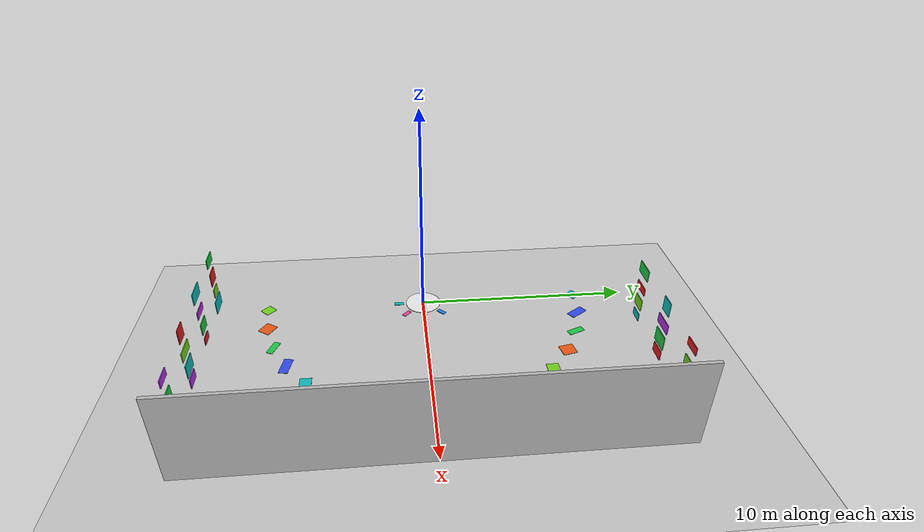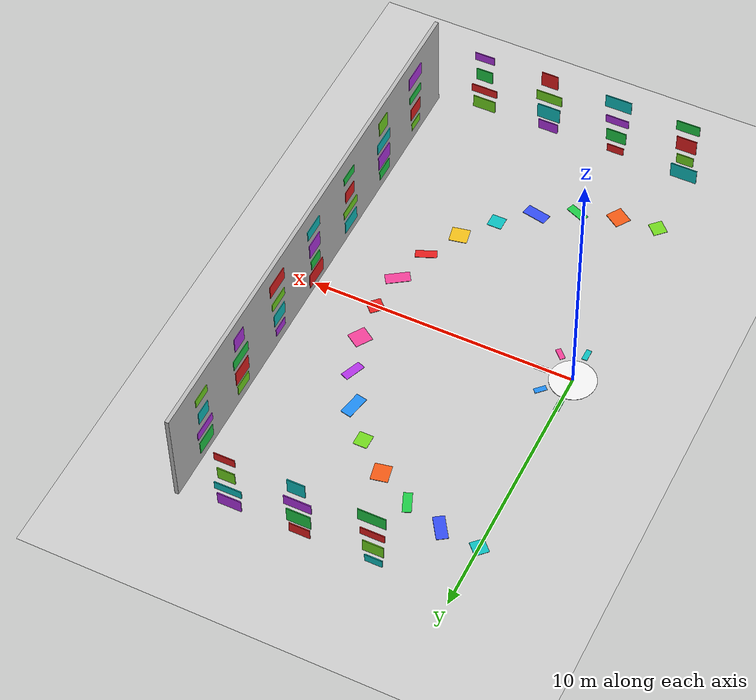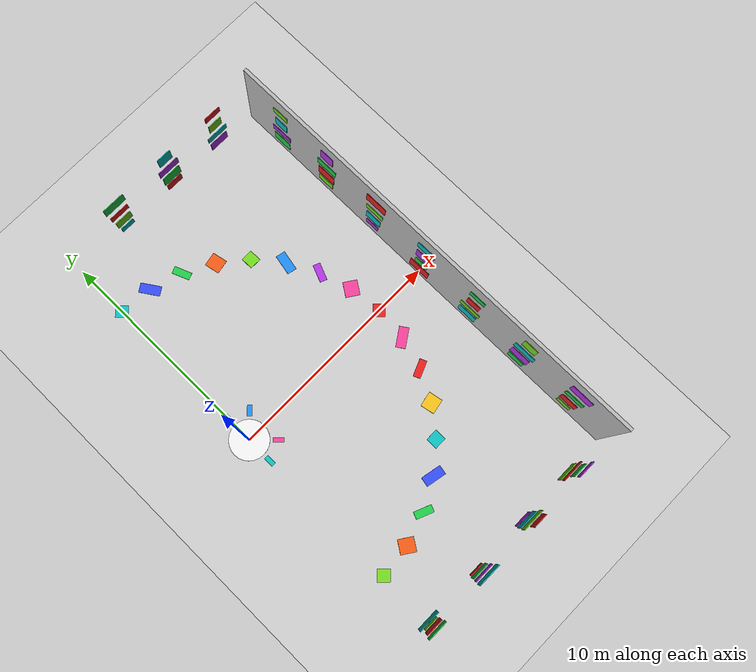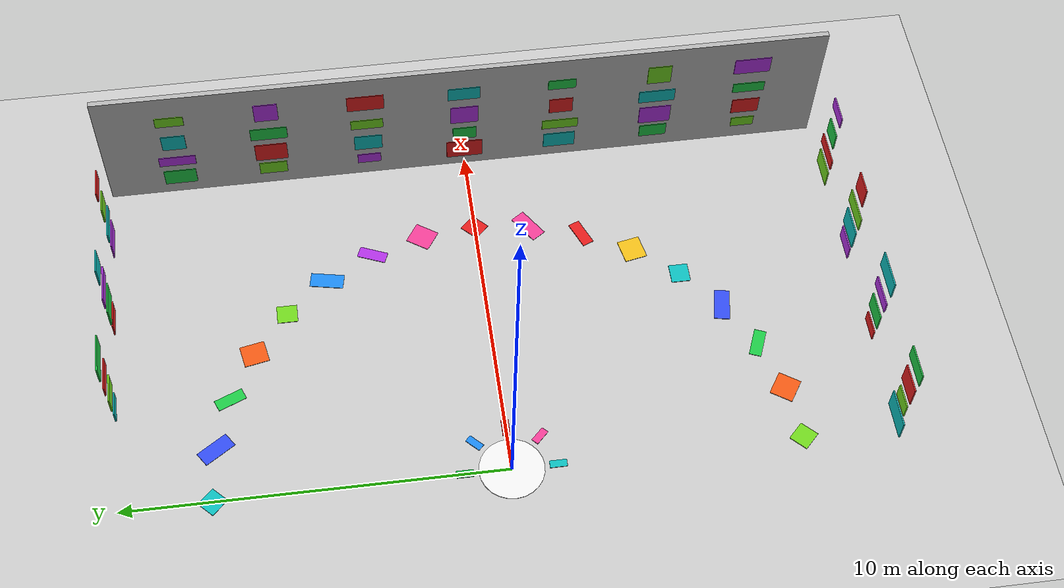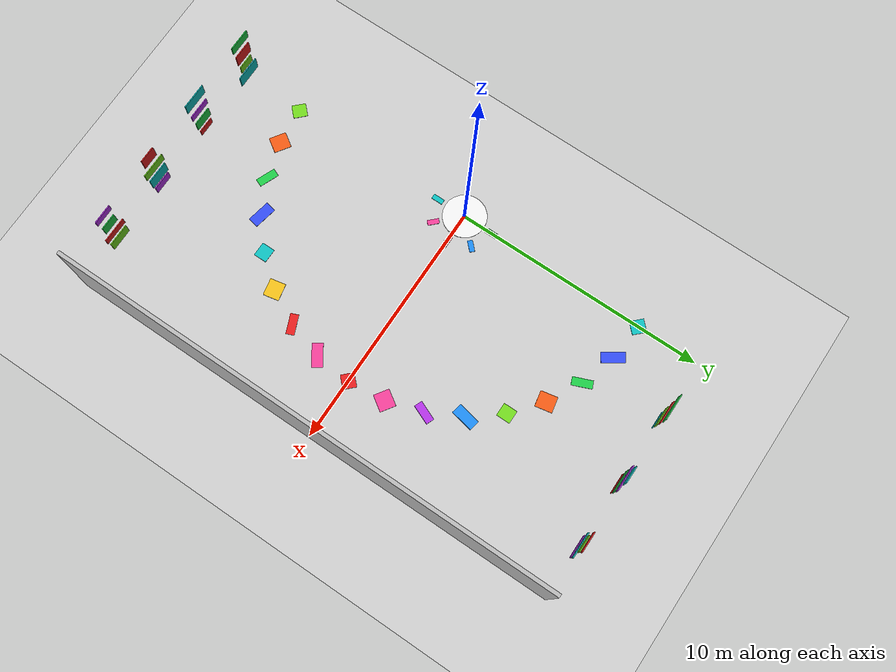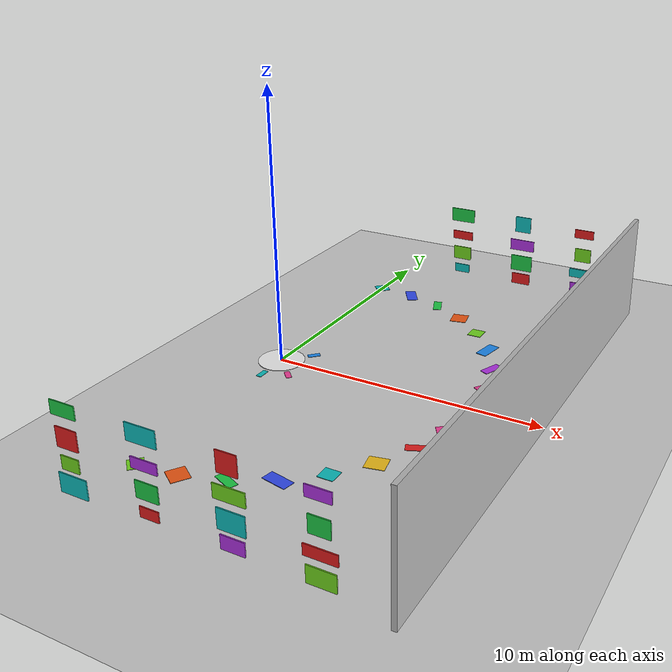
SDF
<sdf version="1.9">
 <world name="vio_marker_arena">
  <model name="ground_plane">
   <static>true</static>
   <link name="link">
    <collision name="collision">
     <geometry><plane><normal>0 0 1</normal><size>1 1</size></plane></geometry>
    </collision>
    <visual name="visual">
     <geometry><plane><normal>0 0 1</normal><size>500 500</size></plane></geometry>
     <material>
      <ambient>0.8 0.8 0.8 1</ambient>
      <diffuse>0.8 0.8 0.8 1</diffuse>
      <specular>0.8 0.8 0.8 1</specular>
     </material>
    </visual>
    <inertial>
     <mass>1</mass>
     <inertia><ixx>1</ixx><ixy>0</ixy><ixz>0</ixz><iyy>1</iyy><iyz>0</iyz><izz>1</izz></inertia>
    </inertial>
   </link>
  </model>
  <model name="vio_wall_east">
   <static>true</static>
   <pose>10.0000 0.0000 2.0000 0.0000 0.0000 0.0000</pose>
   <link name="link">
    <collision name="collision"><geometry><box><size>0.1500 20.0000 4.0000</size></box></geometry></collision>
    <visual name="visual">
     <geometry><box><size>0.1500 20.0000 4.0000</size></box></geometry>
     <material>
      <ambient>0.720 0.720 0.720 1.000</ambient>
      <diffuse>0.720 0.720 0.720 1.000</diffuse>
      <specular>0.10 0.10 0.10 1</specular>
      <emissive>0 0 0 1</emissive>
     </material>
    </visual>
   </link>
  </model>
  <model name="vio_panel_north_0_4">
   <static>true</static>
   <pose>2.7000 9.9190 0.6500 0.0000 0.0000 0.0000</pose>
   <link name="link">
    <visual name="visual">
     <geometry><box><size>0.6500 0.0350 0.3500</size></box></geometry>
     <material>
      <ambient>0.050 0.750 0.750 1.000</ambient>
      <diffuse>0.050 0.750 0.750 1.000</diffuse>
      <specular>0.10 0.10 0.10 1</specular>
      <emissive>0 0 0 1</emissive>
     </material>
    </visual>
   </link>
  </model>
  <model name="vio_panel_north_0_5">
   <static>true</static>
   <pose>5.4000 9.9190 0.6500 0.0000 0.0000 0.0000</pose>
   <link name="link">
    <visual name="visual">
     <geometry><box><size>0.7700 0.0350 0.4500</size></box></geometry>
     <material>
      <ambient>0.900 0.120 0.120 1.000</ambient>
      <diffuse>0.900 0.120 0.120 1.000</diffuse>
      <specular>0.10 0.10 0.10 1</specular>
      <emissive>0 0 0 1</emissive>
     </material>
    </visual>
   </link>
  </model>
  <model name="vio_panel_north_0_6">
   <static>true</static>
   <pose>8.0000 9.9190 0.6500 0.0000 0.0000 0.0000</pose>
   <link name="link">
    <visual name="visual">
     <geometry><box><size>0.8900 0.0350 0.5500</size></box></geometry>
     <material>
      <ambient>0.700 0.200 0.900 1.000</ambient>
      <diffuse>0.700 0.200 0.900 1.000</diffuse>
      <specular>0.10 0.10 0.10 1</specular>
      <emissive>0 0 0 1</emissive>
     </material>
    </visual>
   </link>
  </model>
  <model name="vio_panel_north_1_4">
   <static>true</static>
   <pose>2.7000 9.9190 1.3500 0.0000 0.0000 0.0000</pose>
   <link name="link">
    <visual name="visual">
     <geometry><box><size>0.7700 0.0350 0.5500</size></box></geometry>
     <material>
      <ambient>0.450 0.850 0.120 1.000</ambient>
      <diffuse>0.450 0.850 0.120 1.000</diffuse>
      <specular>0.10 0.10 0.10 1</specular>
      <emissive>0 0 0 1</emissive>
     </material>
    </visual>
   </link>
  </model>
  <model name="vio_panel_north_1_5">
   <static>true</static>
   <pose>5.4000 9.9190 1.3500 0.0000 0.0000 0.0000</pose>
   <link name="link">
    <visual name="visual">
     <geometry><box><size>0.8900 0.0350 0.6500</size></box></geometry>
     <material>
      <ambient>0.120 0.800 0.280 1.000</ambient>
      <diffuse>0.120 0.800 0.280 1.000</diffuse>
      <specular>0.10 0.10 0.10 1</specular>
      <emissive>0 0 0 1</emissive>
     </material>
    </visual>
   </link>
  </model>
  <model name="vio_panel_north_1_6">
   <static>true</static>
   <pose>8.0000 9.9190 1.3500 0.0000 0.0000 0.0000</pose>
   <link name="link">
    <visual name="visual">
     <geometry><box><size>1.0100 0.0350 0.3500</size></box></geometry>
     <material>
      <ambient>0.050 0.750 0.750 1.000</ambient>
      <diffuse>0.050 0.750 0.750 1.000</diffuse>
      <specular>0.10 0.10 0.10 1</specular>
      <emissive>0 0 0 1</emissive>
     </material>
    </visual>
   </link>
  </model>
  <model name="vio_panel_north_2_4">
   <static>true</static>
   <pose>2.7000 9.9190 2.1500 0.0000 0.0000 0.0000</pose>
   <link name="link">
    <visual name="visual">
     <geometry><box><size>0.8900 0.0350 0.3500</size></box></geometry>
     <material>
      <ambient>0.900 0.120 0.120 1.000</ambient>
      <diffuse>0.900 0.120 0.120 1.000</diffuse>
      <specular>0.10 0.10 0.10 1</specular>
      <emissive>0 0 0 1</emissive>
     </material>
    </visual>
   </link>
  </model>
  <model name="vio_panel_north_2_5">
   <static>true</static>
   <pose>5.4000 9.9190 2.1500 0.0000 0.0000 0.0000</pose>
   <link name="link">
    <visual name="visual">
     <geometry><box><size>1.0100 0.0350 0.4500</size></box></geometry>
     <material>
      <ambient>0.700 0.200 0.900 1.000</ambient>
      <diffuse>0.700 0.200 0.900 1.000</diffuse>
      <specular>0.10 0.10 0.10 1</specular>
      <emissive>0 0 0 1</emissive>
     </material>
    </visual>
   </link>
  </model>
  <model name="vio_panel_north_2_6">
   <static>true</static>
   <pose>8.0000 9.9190 2.1500 0.0000 0.0000 0.0000</pose>
   <link name="link">
    <visual name="visual">
     <geometry><box><size>0.6500 0.0350 0.5500</size></box></geometry>
     <material>
      <ambient>0.450 0.850 0.120 1.000</ambient>
      <diffuse>0.450 0.850 0.120 1.000</diffuse>
      <specular>0.10 0.10 0.10 1</specular>
      <emissive>0 0 0 1</emissive>
     </material>
    </visual>
   </link>
  </model>
  <model name="vio_panel_north_3_4">
   <static>true</static>
   <pose>2.7000 9.9190 3.0500 0.0000 0.0000 0.0000</pose>
   <link name="link">
    <visual name="visual">
     <geometry><box><size>1.0100 0.0350 0.5500</size></box></geometry>
     <material>
      <ambient>0.120 0.800 0.280 1.000</ambient>
      <diffuse>0.120 0.800 0.280 1.000</diffuse>
      <specular>0.10 0.10 0.10 1</specular>
      <emissive>0 0 0 1</emissive>
     </material>
    </visual>
   </link>
  </model>
  <model name="vio_panel_north_3_5">
   <static>true</static>
   <pose>5.4000 9.9190 3.0500 0.0000 0.0000 0.0000</pose>
   <link name="link">
    <visual name="visual">
     <geometry><box><size>0.6500 0.0350 0.6500</size></box></geometry>
     <material>
      <ambient>0.050 0.750 0.750 1.000</ambient>
      <diffuse>0.050 0.750 0.750 1.000</diffuse>
      <specular>0.10 0.10 0.10 1</specular>
      <emissive>0 0 0 1</emissive>
     </material>
    </visual>
   </link>
  </model>
  <model name="vio_panel_north_3_6">
   <static>true</static>
   <pose>8.0000 9.9190 3.0500 0.0000 0.0000 0.0000</pose>
   <link name="link">
    <visual name="visual">
     <geometry><box><size>0.7700 0.0350 0.3500</size></box></geometry>
     <material>
      <ambient>0.900 0.120 0.120 1.000</ambient>
      <diffuse>0.900 0.120 0.120 1.000</diffuse>
      <specular>0.10 0.10 0.10 1</specular>
      <emissive>0 0 0 1</emissive>
     </material>
    </visual>
   </link>
  </model>
  <model name="vio_panel_south_0_3">
   <static>true</static>
   <pose>0.0000 -9.9190 0.6500 0.0000 0.0000 0.0000</pose>
   <link name="link">
    <visual name="visual">
     <geometry><box><size>1.0100 0.0350 0.6500</size></box></geometry>
     <material>
      <ambient>0.050 0.750 0.750 1.000</ambient>
      <diffuse>0.050 0.750 0.750 1.000</diffuse>
      <specular>0.10 0.10 0.10 1</specular>
      <emissive>0 0 0 1</emissive>
     </material>
    </visual>
   </link>
  </model>
  <model name="vio_panel_south_0_4">
   <static>true</static>
   <pose>2.7000 -9.9190 0.6500 0.0000 0.0000 0.0000</pose>
   <link name="link">
    <visual name="visual">
     <geometry><box><size>0.6500 0.0350 0.3500</size></box></geometry>
     <material>
      <ambient>0.900 0.120 0.120 1.000</ambient>
      <diffuse>0.900 0.120 0.120 1.000</diffuse>
      <specular>0.10 0.10 0.10 1</specular>
      <emissive>0 0 0 1</emissive>
     </material>
    </visual>
   </link>
  </model>
  <model name="vio_panel_south_0_5">
   <static>true</static>
   <pose>5.4000 -9.9190 0.6500 0.0000 0.0000 0.0000</pose>
   <link name="link">
    <visual name="visual">
     <geometry><box><size>0.7700 0.0350 0.4500</size></box></geometry>
     <material>
      <ambient>0.700 0.200 0.900 1.000</ambient>
      <diffuse>0.700 0.200 0.900 1.000</diffuse>
      <specular>0.10 0.10 0.10 1</specular>
      <emissive>0 0 0 1</emissive>
     </material>
    </visual>
   </link>
  </model>
  <model name="vio_panel_south_0_6">
   <static>true</static>
   <pose>8.0000 -9.9190 0.6500 0.0000 0.0000 0.0000</pose>
   <link name="link">
    <visual name="visual">
     <geometry><box><size>0.8900 0.0350 0.5500</size></box></geometry>
     <material>
      <ambient>0.450 0.850 0.120 1.000</ambient>
      <diffuse>0.450 0.850 0.120 1.000</diffuse>
      <specular>0.10 0.10 0.10 1</specular>
      <emissive>0 0 0 1</emissive>
     </material>
    </visual>
   </link>
  </model>
  <model name="vio_panel_south_1_3">
   <static>true</static>
   <pose>0.0000 -9.9190 1.3500 0.0000 0.0000 0.0000</pose>
   <link name="link">
    <visual name="visual">
     <geometry><box><size>0.6500 0.0350 0.4500</size></box></geometry>
     <material>
      <ambient>0.450 0.850 0.120 1.000</ambient>
      <diffuse>0.450 0.850 0.120 1.000</diffuse>
      <specular>0.10 0.10 0.10 1</specular>
      <emissive>0 0 0 1</emissive>
     </material>
    </visual>
   </link>
  </model>
  <model name="vio_panel_south_1_4">
   <static>true</static>
   <pose>2.7000 -9.9190 1.3500 0.0000 0.0000 0.0000</pose>
   <link name="link">
    <visual name="visual">
     <geometry><box><size>0.7700 0.0350 0.5500</size></box></geometry>
     <material>
      <ambient>0.120 0.800 0.280 1.000</ambient>
      <diffuse>0.120 0.800 0.280 1.000</diffuse>
      <specular>0.10 0.10 0.10 1</specular>
      <emissive>0 0 0 1</emissive>
     </material>
    </visual>
   </link>
  </model>
  <model name="vio_panel_south_1_5">
   <static>true</static>
   <pose>5.4000 -9.9190 1.3500 0.0000 0.0000 0.0000</pose>
   <link name="link">
    <visual name="visual">
     <geometry><box><size>0.8900 0.0350 0.6500</size></box></geometry>
     <material>
      <ambient>0.050 0.750 0.750 1.000</ambient>
      <diffuse>0.050 0.750 0.750 1.000</diffuse>
      <specular>0.10 0.10 0.10 1</specular>
      <emissive>0 0 0 1</emissive>
     </material>
    </visual>
   </link>
  </model>
  <model name="vio_panel_south_1_6">
   <static>true</static>
   <pose>8.0000 -9.9190 1.3500 0.0000 0.0000 0.0000</pose>
   <link name="link">
    <visual name="visual">
     <geometry><box><size>1.0100 0.0350 0.3500</size></box></geometry>
     <material>
      <ambient>0.900 0.120 0.120 1.000</ambient>
      <diffuse>0.900 0.120 0.120 1.000</diffuse>
      <specular>0.10 0.10 0.10 1</specular>
      <emissive>0 0 0 1</emissive>
     </material>
    </visual>
   </link>
  </model>
  <model name="vio_panel_south_2_3">
   <static>true</static>
   <pose>0.0000 -9.9190 2.1500 0.0000 0.0000 0.0000</pose>
   <link name="link">
    <visual name="visual">
     <geometry><box><size>0.7700 0.0350 0.6500</size></box></geometry>
     <material>
      <ambient>0.900 0.120 0.120 1.000</ambient>
      <diffuse>0.900 0.120 0.120 1.000</diffuse>
      <specular>0.10 0.10 0.10 1</specular>
      <emissive>0 0 0 1</emissive>
     </material>
    </visual>
   </link>
  </model>
  <model name="vio_panel_south_2_4">
   <static>true</static>
   <pose>2.7000 -9.9190 2.1500 0.0000 0.0000 0.0000</pose>
   <link name="link">
    <visual name="visual">
     <geometry><box><size>0.8900 0.0350 0.3500</size></box></geometry>
     <material>
      <ambient>0.700 0.200 0.900 1.000</ambient>
      <diffuse>0.700 0.200 0.900 1.000</diffuse>
      <specular>0.10 0.10 0.10 1</specular>
      <emissive>0 0 0 1</emissive>
     </material>
    </visual>
   </link>
  </model>
  <model name="vio_panel_south_2_5">
   <static>true</static>
   <pose>5.4000 -9.9190 2.1500 0.0000 0.0000 0.0000</pose>
   <link name="link">
    <visual name="visual">
     <geometry><box><size>1.0100 0.0350 0.4500</size></box></geometry>
     <material>
      <ambient>0.450 0.850 0.120 1.000</ambient>
      <diffuse>0.450 0.850 0.120 1.000</diffuse>
      <specular>0.10 0.10 0.10 1</specular>
      <emissive>0 0 0 1</emissive>
     </material>
    </visual>
   </link>
  </model>
  <model name="vio_panel_south_2_6">
   <static>true</static>
   <pose>8.0000 -9.9190 2.1500 0.0000 0.0000 0.0000</pose>
   <link name="link">
    <visual name="visual">
     <geometry><box><size>0.6500 0.0350 0.5500</size></box></geometry>
     <material>
      <ambient>0.120 0.800 0.280 1.000</ambient>
      <diffuse>0.120 0.800 0.280 1.000</diffuse>
      <specular>0.10 0.10 0.10 1</specular>
      <emissive>0 0 0 1</emissive>
     </material>
    </visual>
   </link>
  </model>
  <model name="vio_panel_south_3_3">
   <static>true</static>
   <pose>0.0000 -9.9190 3.0500 0.0000 0.0000 0.0000</pose>
   <link name="link">
    <visual name="visual">
     <geometry><box><size>0.8900 0.0350 0.4500</size></box></geometry>
     <material>
      <ambient>0.120 0.800 0.280 1.000</ambient>
      <diffuse>0.120 0.800 0.280 1.000</diffuse>
      <specular>0.10 0.10 0.10 1</specular>
      <emissive>0 0 0 1</emissive>
     </material>
    </visual>
   </link>
  </model>
  <model name="vio_panel_south_3_4">
   <static>true</static>
   <pose>2.7000 -9.9190 3.0500 0.0000 0.0000 0.0000</pose>
   <link name="link">
    <visual name="visual">
     <geometry><box><size>1.0100 0.0350 0.5500</size></box></geometry>
     <material>
      <ambient>0.050 0.750 0.750 1.000</ambient>
      <diffuse>0.050 0.750 0.750 1.000</diffuse>
      <specular>0.10 0.10 0.10 1</specular>
      <emissive>0 0 0 1</emissive>
     </material>
    </visual>
   </link>
  </model>
  <model name="vio_panel_south_3_5">
   <static>true</static>
   <pose>5.4000 -9.9190 3.0500 0.0000 0.0000 0.0000</pose>
   <link name="link">
    <visual name="visual">
     <geometry><box><size>0.6500 0.0350 0.6500</size></box></geometry>
     <material>
      <ambient>0.900 0.120 0.120 1.000</ambient>
      <diffuse>0.900 0.120 0.120 1.000</diffuse>
      <specular>0.10 0.10 0.10 1</specular>
      <emissive>0 0 0 1</emissive>
     </material>
    </visual>
   </link>
  </model>
  <model name="vio_panel_south_3_6">
   <static>true</static>
   <pose>8.0000 -9.9190 3.0500 0.0000 0.0000 0.0000</pose>
   <link name="link">
    <visual name="visual">
     <geometry><box><size>0.7700 0.0350 0.3500</size></box></geometry>
     <material>
      <ambient>0.700 0.200 0.900 1.000</ambient>
      <diffuse>0.700 0.200 0.900 1.000</diffuse>
      <specular>0.10 0.10 0.10 1</specular>
      <emissive>0 0 0 1</emissive>
     </material>
    </visual>
   </link>
  </model>
  <model name="vio_panel_east_0_0">
   <static>true</static>
   <pose>9.9190 -8.0000 0.6500 0.0000 0.0000 0.0000</pose>
   <link name="link">
    <visual name="visual">
     <geometry><box><size>0.0350 0.6500 0.3500</size></box></geometry>
     <material>
      <ambient>0.450 0.850 0.120 1.000</ambient>
      <diffuse>0.450 0.850 0.120 1.000</diffuse>
      <specular>0.10 0.10 0.10 1</specular>
      <emissive>0 0 0 1</emissive>
     </material>
    </visual>
   </link>
  </model>
  <model name="vio_panel_east_0_1">
   <static>true</static>
   <pose>9.9190 -5.4000 0.6500 0.0000 0.0000 0.0000</pose>
   <link name="link">
    <visual name="visual">
     <geometry><box><size>0.0350 0.7700 0.4500</size></box></geometry>
     <material>
      <ambient>0.120 0.800 0.280 1.000</ambient>
      <diffuse>0.120 0.800 0.280 1.000</diffuse>
      <specular>0.10 0.10 0.10 1</specular>
      <emissive>0 0 0 1</emissive>
     </material>
    </visual>
   </link>
  </model>
  <model name="vio_panel_east_0_2">
   <static>true</static>
   <pose>9.9190 -2.7000 0.6500 0.0000 0.0000 0.0000</pose>
   <link name="link">
    <visual name="visual">
     <geometry><box><size>0.0350 0.8900 0.5500</size></box></geometry>
     <material>
      <ambient>0.050 0.750 0.750 1.000</ambient>
      <diffuse>0.050 0.750 0.750 1.000</diffuse>
      <specular>0.10 0.10 0.10 1</specular>
      <emissive>0 0 0 1</emissive>
     </material>
    </visual>
   </link>
  </model>
  <model name="vio_panel_east_0_3">
   <static>true</static>
   <pose>9.9190 0.0000 0.6500 0.0000 0.0000 0.0000</pose>
   <link name="link">
    <visual name="visual">
     <geometry><box><size>0.0350 1.0100 0.6500</size></box></geometry>
     <material>
      <ambient>0.900 0.120 0.120 1.000</ambient>
      <diffuse>0.900 0.120 0.120 1.000</diffuse>
      <specular>0.10 0.10 0.10 1</specular>
      <emissive>0 0 0 1</emissive>
     </material>
    </visual>
   </link>
  </model>
  <model name="vio_panel_east_0_4">
   <static>true</static>
   <pose>9.9190 2.7000 0.6500 0.0000 0.0000 0.0000</pose>
   <link name="link">
    <visual name="visual">
     <geometry><box><size>0.0350 0.6500 0.3500</size></box></geometry>
     <material>
      <ambient>0.700 0.200 0.900 1.000</ambient>
      <diffuse>0.700 0.200 0.900 1.000</diffuse>
      <specular>0.10 0.10 0.10 1</specular>
      <emissive>0 0 0 1</emissive>
     </material>
    </visual>
   </link>
  </model>
  <model name="vio_panel_east_0_5">
   <static>true</static>
   <pose>9.9190 5.4000 0.6500 0.0000 0.0000 0.0000</pose>
   <link name="link">
    <visual name="visual">
     <geometry><box><size>0.0350 0.7700 0.4500</size></box></geometry>
     <material>
      <ambient>0.450 0.850 0.120 1.000</ambient>
      <diffuse>0.450 0.850 0.120 1.000</diffuse>
      <specular>0.10 0.10 0.10 1</specular>
      <emissive>0 0 0 1</emissive>
     </material>
    </visual>
   </link>
  </model>
  <model name="vio_panel_east_0_6">
   <static>true</static>
   <pose>9.9190 8.0000 0.6500 0.0000 0.0000 0.0000</pose>
   <link name="link">
    <visual name="visual">
     <geometry><box><size>0.0350 0.8900 0.5500</size></box></geometry>
     <material>
      <ambient>0.120 0.800 0.280 1.000</ambient>
      <diffuse>0.120 0.800 0.280 1.000</diffuse>
      <specular>0.10 0.10 0.10 1</specular>
      <emissive>0 0 0 1</emissive>
     </material>
    </visual>
   </link>
  </model>
  <model name="vio_panel_east_1_0">
   <static>true</static>
   <pose>9.9190 -8.0000 1.3500 0.0000 0.0000 0.0000</pose>
   <link name="link">
    <visual name="visual">
     <geometry><box><size>0.0350 0.7700 0.5500</size></box></geometry>
     <material>
      <ambient>0.900 0.120 0.120 1.000</ambient>
      <diffuse>0.900 0.120 0.120 1.000</diffuse>
      <specular>0.10 0.10 0.10 1</specular>
      <emissive>0 0 0 1</emissive>
     </material>
    </visual>
   </link>
  </model>
  <model name="vio_panel_east_1_1">
   <static>true</static>
   <pose>9.9190 -5.4000 1.3500 0.0000 0.0000 0.0000</pose>
   <link name="link">
    <visual name="visual">
     <geometry><box><size>0.0350 0.8900 0.6500</size></box></geometry>
     <material>
      <ambient>0.700 0.200 0.900 1.000</ambient>
      <diffuse>0.700 0.200 0.900 1.000</diffuse>
      <specular>0.10 0.10 0.10 1</specular>
      <emissive>0 0 0 1</emissive>
     </material>
    </visual>
   </link>
  </model>
  <model name="vio_panel_east_1_2">
   <static>true</static>
   <pose>9.9190 -2.7000 1.3500 0.0000 0.0000 0.0000</pose>
   <link name="link">
    <visual name="visual">
     <geometry><box><size>0.0350 1.0100 0.3500</size></box></geometry>
     <material>
      <ambient>0.450 0.850 0.120 1.000</ambient>
      <diffuse>0.450 0.850 0.120 1.000</diffuse>
      <specular>0.10 0.10 0.10 1</specular>
      <emissive>0 0 0 1</emissive>
     </material>
    </visual>
   </link>
  </model>
  <model name="vio_panel_east_1_3">
   <static>true</static>
   <pose>9.9190 0.0000 1.3500 0.0000 0.0000 0.0000</pose>
   <link name="link">
    <visual name="visual">
     <geometry><box><size>0.0350 0.6500 0.4500</size></box></geometry>
     <material>
      <ambient>0.120 0.800 0.280 1.000</ambient>
      <diffuse>0.120 0.800 0.280 1.000</diffuse>
      <specular>0.10 0.10 0.10 1</specular>
      <emissive>0 0 0 1</emissive>
     </material>
    </visual>
   </link>
  </model>
  <model name="vio_panel_east_1_4">
   <static>true</static>
   <pose>9.9190 2.7000 1.3500 0.0000 0.0000 0.0000</pose>
   <link name="link">
    <visual name="visual">
     <geometry><box><size>0.0350 0.7700 0.5500</size></box></geometry>
     <material>
      <ambient>0.050 0.750 0.750 1.000</ambient>
      <diffuse>0.050 0.750 0.750 1.000</diffuse>
      <specular>0.10 0.10 0.10 1</specular>
      <emissive>0 0 0 1</emissive>
     </material>
    </visual>
   </link>
  </model>
  <model name="vio_panel_east_1_5">
   <static>true</static>
   <pose>9.9190 5.4000 1.3500 0.0000 0.0000 0.0000</pose>
   <link name="link">
    <visual name="visual">
     <geometry><box><size>0.0350 0.8900 0.6500</size></box></geometry>
     <material>
      <ambient>0.900 0.120 0.120 1.000</ambient>
      <diffuse>0.900 0.120 0.120 1.000</diffuse>
      <specular>0.10 0.10 0.10 1</specular>
      <emissive>0 0 0 1</emissive>
     </material>
    </visual>
   </link>
  </model>
  <model name="vio_panel_east_1_6">
   <static>true</static>
   <pose>9.9190 8.0000 1.3500 0.0000 0.0000 0.0000</pose>
   <link name="link">
    <visual name="visual">
     <geometry><box><size>0.0350 1.0100 0.3500</size></box></geometry>
     <material>
      <ambient>0.700 0.200 0.900 1.000</ambient>
      <diffuse>0.700 0.200 0.900 1.000</diffuse>
      <specular>0.10 0.10 0.10 1</specular>
      <emissive>0 0 0 1</emissive>
     </material>
    </visual>
   </link>
  </model>
  <model name="vio_panel_east_2_0">
   <static>true</static>
   <pose>9.9190 -8.0000 2.1500 0.0000 0.0000 0.0000</pose>
   <link name="link">
    <visual name="visual">
     <geometry><box><size>0.0350 0.8900 0.3500</size></box></geometry>
     <material>
      <ambient>0.120 0.800 0.280 1.000</ambient>
      <diffuse>0.120 0.800 0.280 1.000</diffuse>
      <specular>0.10 0.10 0.10 1</specular>
      <emissive>0 0 0 1</emissive>
     </material>
    </visual>
   </link>
  </model>
  <model name="vio_panel_east_2_1">
   <static>true</static>
   <pose>9.9190 -5.4000 2.1500 0.0000 0.0000 0.0000</pose>
   <link name="link">
    <visual name="visual">
     <geometry><box><size>0.0350 1.0100 0.4500</size></box></geometry>
     <material>
      <ambient>0.050 0.750 0.750 1.000</ambient>
      <diffuse>0.050 0.750 0.750 1.000</diffuse>
      <specular>0.10 0.10 0.10 1</specular>
      <emissive>0 0 0 1</emissive>
     </material>
    </visual>
   </link>
  </model>
  <model name="vio_panel_east_2_2">
   <static>true</static>
   <pose>9.9190 -2.7000 2.1500 0.0000 0.0000 0.0000</pose>
   <link name="link">
    <visual name="visual">
     <geometry><box><size>0.0350 0.6500 0.5500</size></box></geometry>
     <material>
      <ambient>0.900 0.120 0.120 1.000</ambient>
      <diffuse>0.900 0.120 0.120 1.000</diffuse>
      <specular>0.10 0.10 0.10 1</specular>
      <emissive>0 0 0 1</emissive>
     </material>
    </visual>
   </link>
  </model>
  <model name="vio_panel_east_2_3">
   <static>true</static>
   <pose>9.9190 0.0000 2.1500 0.0000 0.0000 0.0000</pose>
   <link name="link">
    <visual name="visual">
     <geometry><box><size>0.0350 0.7700 0.6500</size></box></geometry>
     <material>
      <ambient>0.700 0.200 0.900 1.000</ambient>
      <diffuse>0.700 0.200 0.900 1.000</diffuse>
      <specular>0.10 0.10 0.10 1</specular>
      <emissive>0 0 0 1</emissive>
     </material>
    </visual>
   </link>
  </model>
  <model name="vio_panel_east_2_4">
   <static>true</static>
   <pose>9.9190 2.7000 2.1500 0.0000 0.0000 0.0000</pose>
   <link name="link">
    <visual name="visual">
     <geometry><box><size>0.0350 0.8900 0.3500</size></box></geometry>
     <material>
      <ambient>0.450 0.850 0.120 1.000</ambient>
      <diffuse>0.450 0.850 0.120 1.000</diffuse>
      <specular>0.10 0.10 0.10 1</specular>
      <emissive>0 0 0 1</emissive>
     </material>
    </visual>
   </link>
  </model>
  <model name="vio_panel_east_2_5">
   <static>true</static>
   <pose>9.9190 5.4000 2.1500 0.0000 0.0000 0.0000</pose>
   <link name="link">
    <visual name="visual">
     <geometry><box><size>0.0350 1.0100 0.4500</size></box></geometry>
     <material>
      <ambient>0.120 0.800 0.280 1.000</ambient>
      <diffuse>0.120 0.800 0.280 1.000</diffuse>
      <specular>0.10 0.10 0.10 1</specular>
      <emissive>0 0 0 1</emissive>
     </material>
    </visual>
   </link>
  </model>
  <model name="vio_panel_east_2_6">
   <static>true</static>
   <pose>9.9190 8.0000 2.1500 0.0000 0.0000 0.0000</pose>
   <link name="link">
    <visual name="visual">
     <geometry><box><size>0.0350 0.6500 0.5500</size></box></geometry>
     <material>
      <ambient>0.050 0.750 0.750 1.000</ambient>
      <diffuse>0.050 0.750 0.750 1.000</diffuse>
      <specular>0.10 0.10 0.10 1</specular>
      <emissive>0 0 0 1</emissive>
     </material>
    </visual>
   </link>
  </model>
  <model name="vio_panel_east_3_0">
   <static>true</static>
   <pose>9.9190 -8.0000 3.0500 0.0000 0.0000 0.0000</pose>
   <link name="link">
    <visual name="visual">
     <geometry><box><size>0.0350 1.0100 0.5500</size></box></geometry>
     <material>
      <ambient>0.700 0.200 0.900 1.000</ambient>
      <diffuse>0.700 0.200 0.900 1.000</diffuse>
      <specular>0.10 0.10 0.10 1</specular>
      <emissive>0 0 0 1</emissive>
     </material>
    </visual>
   </link>
  </model>
  <model name="vio_panel_east_3_1">
   <static>true</static>
   <pose>9.9190 -5.4000 3.0500 0.0000 0.0000 0.0000</pose>
   <link name="link">
    <visual name="visual">
     <geometry><box><size>0.0350 0.6500 0.6500</size></box></geometry>
     <material>
      <ambient>0.450 0.850 0.120 1.000</ambient>
      <diffuse>0.450 0.850 0.120 1.000</diffuse>
      <specular>0.10 0.10 0.10 1</specular>
      <emissive>0 0 0 1</emissive>
     </material>
    </visual>
   </link>
  </model>
  <model name="vio_panel_east_3_2">
   <static>true</static>
   <pose>9.9190 -2.7000 3.0500 0.0000 0.0000 0.0000</pose>
   <link name="link">
    <visual name="visual">
     <geometry><box><size>0.0350 0.7700 0.3500</size></box></geometry>
     <material>
      <ambient>0.120 0.800 0.280 1.000</ambient>
      <diffuse>0.120 0.800 0.280 1.000</diffuse>
      <specular>0.10 0.10 0.10 1</specular>
      <emissive>0 0 0 1</emissive>
     </material>
    </visual>
   </link>
  </model>
  <model name="vio_panel_east_3_3">
   <static>true</static>
   <pose>9.9190 0.0000 3.0500 0.0000 0.0000 0.0000</pose>
   <link name="link">
    <visual name="visual">
     <geometry><box><size>0.0350 0.8900 0.4500</size></box></geometry>
     <material>
      <ambient>0.050 0.750 0.750 1.000</ambient>
      <diffuse>0.050 0.750 0.750 1.000</diffuse>
      <specular>0.10 0.10 0.10 1</specular>
      <emissive>0 0 0 1</emissive>
     </material>
    </visual>
   </link>
  </model>
  <model name="vio_panel_east_3_4">
   <static>true</static>
   <pose>9.9190 2.7000 3.0500 0.0000 0.0000 0.0000</pose>
   <link name="link">
    <visual name="visual">
     <geometry><box><size>0.0350 1.0100 0.5500</size></box></geometry>
     <material>
      <ambient>0.900 0.120 0.120 1.000</ambient>
      <diffuse>0.900 0.120 0.120 1.000</diffuse>
      <specular>0.10 0.10 0.10 1</specular>
      <emissive>0 0 0 1</emissive>
     </material>
    </visual>
   </link>
  </model>
  <model name="vio_panel_east_3_5">
   <static>true</static>
   <pose>9.9190 5.4000 3.0500 0.0000 0.0000 0.0000</pose>
   <link name="link">
    <visual name="visual">
     <geometry><box><size>0.0350 0.6500 0.6500</size></box></geometry>
     <material>
      <ambient>0.700 0.200 0.900 1.000</ambient>
      <diffuse>0.700 0.200 0.900 1.000</diffuse>
      <specular>0.10 0.10 0.10 1</specular>
      <emissive>0 0 0 1</emissive>
     </material>
    </visual>
   </link>
  </model>
  <model name="vio_panel_east_3_6">
   <static>true</static>
   <pose>9.9190 8.0000 3.0500 0.0000 0.0000 0.0000</pose>
   <link name="link">
    <visual name="visual">
     <geometry><box><size>0.0350 0.7700 0.3500</size></box></geometry>
     <material>
      <ambient>0.450 0.850 0.120 1.000</ambient>
      <diffuse>0.450 0.850 0.120 1.000</diffuse>
      <specular>0.10 0.10 0.10 1</specular>
      <emissive>0 0 0 1</emissive>
     </material>
    </visual>
   </link>
  </model>
  <model name="vio_floor_marker_00">
   <static>true</static>
   <pose>7.6000 0.0000 0.0120 0.0000 0.0000 0.7854</pose>
   <link name="link">
    <visual name="visual">
     <geometry><box><size>0.5500 0.5200 0.0180</size></box></geometry>
     <material>
      <ambient>0.900 0.120 0.120 1.000</ambient>
      <diffuse>0.900 0.120 0.120 1.000</diffuse>
      <specular>0.10 0.10 0.10 1</specular>
      <emissive>0 0 0 1</emissive>
     </material>
    </visual>
   </link>
  </model>
  <model name="vio_floor_marker_01">
   <static>true</static>
   <pose>7.4540 1.4827 0.0120 0.0000 0.0000 0.9817</pose>
   <link name="link">
    <visual name="visual">
     <geometry><box><size>0.6700 0.6200 0.0180</size></box></geometry>
     <material>
      <ambient>0.950 0.250 0.600 1.000</ambient>
      <diffuse>0.950 0.250 0.600 1.000</diffuse>
      <specular>0.10 0.10 0.10 1</specular>
      <emissive>0 0 0 1</emissive>
     </material>
    </visual>
   </link>
  </model>
  <model name="vio_floor_marker_02">
   <static>true</static>
   <pose>7.0215 2.9084 0.0120 0.0000 0.0000 1.1781</pose>
   <link name="link">
    <visual name="visual">
     <geometry><box><size>0.7900 0.3200 0.0180</size></box></geometry>
     <material>
      <ambient>0.700 0.200 0.900 1.000</ambient>
      <diffuse>0.700 0.200 0.900 1.000</diffuse>
      <specular>0.10 0.10 0.10 1</specular>
      <emissive>0 0 0 1</emissive>
     </material>
    </visual>
   </link>
  </model>
  <model name="vio_floor_marker_03">
   <static>true</static>
   <pose>6.3192 4.2223 0.0120 0.0000 0.0000 1.3744</pose>
   <link name="link">
    <visual name="visual">
     <geometry><box><size>0.9100 0.4200 0.0180</size></box></geometry>
     <material>
      <ambient>0.120 0.550 0.950 1.000</ambient>
      <diffuse>0.120 0.550 0.950 1.000</diffuse>
      <specular>0.10 0.10 0.10 1</specular>
      <emissive>0 0 0 1</emissive>
     </material>
    </visual>
   </link>
  </model>
  <model name="vio_floor_marker_04">
   <static>true</static>
   <pose>5.3740 5.3740 0.0120 0.0000 0.0000 1.5708</pose>
   <link name="link">
    <visual name="visual">
     <geometry><box><size>0.5500 0.5200 0.0180</size></box></geometry>
     <material>
      <ambient>0.450 0.850 0.120 1.000</ambient>
      <diffuse>0.450 0.850 0.120 1.000</diffuse>
      <specular>0.10 0.10 0.10 1</specular>
      <emissive>0 0 0 1</emissive>
     </material>
    </visual>
   </link>
  </model>
  <model name="vio_floor_marker_05">
   <static>true</static>
   <pose>4.2223 6.3192 0.0120 0.0000 0.0000 1.7671</pose>
   <link name="link">
    <visual name="visual">
     <geometry><box><size>0.6700 0.6200 0.0180</size></box></geometry>
     <material>
      <ambient>0.950 0.350 0.080 1.000</ambient>
      <diffuse>0.950 0.350 0.080 1.000</diffuse>
      <specular>0.10 0.10 0.10 1</specular>
      <emissive>0 0 0 1</emissive>
     </material>
    </visual>
   </link>
  </model>
  <model name="vio_floor_marker_06">
   <static>true</static>
   <pose>2.9084 7.0215 0.0120 0.0000 0.0000 1.9635</pose>
   <link name="link">
    <visual name="visual">
     <geometry><box><size>0.7900 0.3200 0.0180</size></box></geometry>
     <material>
      <ambient>0.120 0.800 0.280 1.000</ambient>
      <diffuse>0.120 0.800 0.280 1.000</diffuse>
      <specular>0.10 0.10 0.10 1</specular>
      <emissive>0 0 0 1</emissive>
     </material>
    </visual>
   </link>
  </model>
  <model name="vio_floor_marker_07">
   <static>true</static>
   <pose>1.4827 7.4540 0.0120 0.0000 0.0000 2.1598</pose>
   <link name="link">
    <visual name="visual">
     <geometry><box><size>0.9100 0.4200 0.0180</size></box></geometry>
     <material>
      <ambient>0.200 0.300 0.950 1.000</ambient>
      <diffuse>0.200 0.300 0.950 1.000</diffuse>
      <specular>0.10 0.10 0.10 1</specular>
      <emissive>0 0 0 1</emissive>
     </material>
    </visual>
   </link>
  </model>
  <model name="vio_floor_marker_08">
   <static>true</static>
   <pose>0.0000 7.6000 0.0120 0.0000 0.0000 2.3562</pose>
   <link name="link">
    <visual name="visual">
     <geometry><box><size>0.5500 0.5200 0.0180</size></box></geometry>
     <material>
      <ambient>0.050 0.750 0.750 1.000</ambient>
      <diffuse>0.050 0.750 0.750 1.000</diffuse>
      <specular>0.10 0.10 0.10 1</specular>
      <emissive>0 0 0 1</emissive>
     </material>
    </visual>
   </link>
  </model>
  <model name="vio_floor_marker_24">
   <static>true</static>
   <pose>-0.0000 -7.6000 0.0120 0.0000 0.0000 5.4978</pose>
   <link name="link">
    <visual name="visual">
     <geometry><box><size>0.5500 0.5200 0.0180</size></box></geometry>
     <material>
      <ambient>0.450 0.850 0.120 1.000</ambient>
      <diffuse>0.450 0.850 0.120 1.000</diffuse>
      <specular>0.10 0.10 0.10 1</specular>
      <emissive>0 0 0 1</emissive>
     </material>
    </visual>
   </link>
  </model>
  <model name="vio_floor_marker_25">
   <static>true</static>
   <pose>1.4827 -7.4540 0.0120 0.0000 0.0000 5.6941</pose>
   <link name="link">
    <visual name="visual">
     <geometry><box><size>0.6700 0.6200 0.0180</size></box></geometry>
     <material>
      <ambient>0.950 0.350 0.080 1.000</ambient>
      <diffuse>0.950 0.350 0.080 1.000</diffuse>
      <specular>0.10 0.10 0.10 1</specular>
      <emissive>0 0 0 1</emissive>
     </material>
    </visual>
   </link>
  </model>
  <model name="vio_floor_marker_26">
   <static>true</static>
   <pose>2.9084 -7.0215 0.0120 0.0000 0.0000 5.8905</pose>
   <link name="link">
    <visual name="visual">
     <geometry><box><size>0.7900 0.3200 0.0180</size></box></geometry>
     <material>
      <ambient>0.120 0.800 0.280 1.000</ambient>
      <diffuse>0.120 0.800 0.280 1.000</diffuse>
      <specular>0.10 0.10 0.10 1</specular>
      <emissive>0 0 0 1</emissive>
     </material>
    </visual>
   </link>
  </model>
  <model name="vio_floor_marker_27">
   <static>true</static>
   <pose>4.2223 -6.3192 0.0120 0.0000 0.0000 6.0868</pose>
   <link name="link">
    <visual name="visual">
     <geometry><box><size>0.9100 0.4200 0.0180</size></box></geometry>
     <material>
      <ambient>0.200 0.300 0.950 1.000</ambient>
      <diffuse>0.200 0.300 0.950 1.000</diffuse>
      <specular>0.10 0.10 0.10 1</specular>
      <emissive>0 0 0 1</emissive>
     </material>
    </visual>
   </link>
  </model>
  <model name="vio_floor_marker_28">
   <static>true</static>
   <pose>5.3740 -5.3740 0.0120 0.0000 0.0000 6.2832</pose>
   <link name="link">
    <visual name="visual">
     <geometry><box><size>0.5500 0.5200 0.0180</size></box></geometry>
     <material>
      <ambient>0.050 0.750 0.750 1.000</ambient>
      <diffuse>0.050 0.750 0.750 1.000</diffuse>
      <specular>0.10 0.10 0.10 1</specular>
      <emissive>0 0 0 1</emissive>
     </material>
    </visual>
   </link>
  </model>
  <model name="vio_floor_marker_29">
   <static>true</static>
   <pose>6.3192 -4.2223 0.0120 0.0000 0.0000 6.4795</pose>
   <link name="link">
    <visual name="visual">
     <geometry><box><size>0.6700 0.6200 0.0180</size></box></geometry>
     <material>
      <ambient>0.950 0.750 0.100 1.000</ambient>
      <diffuse>0.950 0.750 0.100 1.000</diffuse>
      <specular>0.10 0.10 0.10 1</specular>
      <emissive>0 0 0 1</emissive>
     </material>
    </visual>
   </link>
  </model>
  <model name="vio_floor_marker_30">
   <static>true</static>
   <pose>7.0215 -2.9084 0.0120 0.0000 0.0000 6.6759</pose>
   <link name="link">
    <visual name="visual">
     <geometry><box><size>0.7900 0.3200 0.0180</size></box></geometry>
     <material>
      <ambient>0.900 0.120 0.120 1.000</ambient>
      <diffuse>0.900 0.120 0.120 1.000</diffuse>
      <specular>0.10 0.10 0.10 1</specular>
      <emissive>0 0 0 1</emissive>
     </material>
    </visual>
   </link>
  </model>
  <model name="vio_floor_marker_31">
   <static>true</static>
   <pose>7.4540 -1.4827 0.0120 0.0000 0.0000 6.8722</pose>
   <link name="link">
    <visual name="visual">
     <geometry><box><size>0.9100 0.4200 0.0180</size></box></geometry>
     <material>
      <ambient>0.950 0.250 0.600 1.000</ambient>
      <diffuse>0.950 0.250 0.600 1.000</diffuse>
      <specular>0.10 0.10 0.10 1</specular>
      <emissive>0 0 0 1</emissive>
     </material>
    </visual>
   </link>
  </model>
  <model name="vio_center_target">
   <static>true</static>
   <pose>0.0000 0.0000 0.0120 0.0000 0.0000 0.0000</pose>
   <link name="link">
    <visual name="visual">
     <geometry><cylinder><radius>0.8500</radius><length>0.0200</length></cylinder></geometry>
     <material>
      <ambient>0.950 0.950 0.950 1.000</ambient>
      <diffuse>0.950 0.950 0.950 1.000</diffuse>
      <specular>0.10 0.10 0.10 1</specular>
      <emissive>0 0 0 1</emissive>
     </material>
    </visual>
   </link>
  </model>
  <model name="vio_center_marker_0">
   <static>true</static>
   <pose>1.2000 0.0000 0.0130 0.0000 0.0000 0.0000</pose>
   <link name="link">
    <visual name="visual">
     <geometry><box><size>0.4500 0.2000 0.0200</size></box></geometry>
     <material>
      <ambient>0.900 0.120 0.120 1.000</ambient>
      <diffuse>0.900 0.120 0.120 1.000</diffuse>
      <specular>0.10 0.10 0.10 1</specular>
      <emissive>0 0 0 1</emissive>
     </material>
    </visual>
   </link>
  </model>
  <model name="vio_center_marker_1">
   <static>true</static>
   <pose>0.8485 0.8485 0.0130 0.0000 0.0000 0.7854</pose>
   <link name="link">
    <visual name="visual">
     <geometry><box><size>0.4500 0.2000 0.0200</size></box></geometry>
     <material>
      <ambient>0.120 0.550 0.950 1.000</ambient>
      <diffuse>0.120 0.550 0.950 1.000</diffuse>
      <specular>0.10 0.10 0.10 1</specular>
      <emissive>0 0 0 1</emissive>
     </material>
    </visual>
   </link>
  </model>
  <model name="vio_center_marker_2">
   <static>true</static>
   <pose>0.0000 1.2000 0.0130 0.0000 0.0000 1.5708</pose>
   <link name="link">
    <visual name="visual">
     <geometry><box><size>0.4500 0.2000 0.0200</size></box></geometry>
     <material>
      <ambient>0.120 0.800 0.280 1.000</ambient>
      <diffuse>0.120 0.800 0.280 1.000</diffuse>
      <specular>0.10 0.10 0.10 1</specular>
      <emissive>0 0 0 1</emissive>
     </material>
    </visual>
   </link>
  </model>
  <model name="vio_center_marker_6">
   <static>true</static>
   <pose>-0.0000 -1.2000 0.0130 0.0000 0.0000 4.7124</pose>
   <link name="link">
    <visual name="visual">
     <geometry><box><size>0.4500 0.2000 0.0200</size></box></geometry>
     <material>
      <ambient>0.050 0.750 0.750 1.000</ambient>
      <diffuse>0.050 0.750 0.750 1.000</diffuse>
      <specular>0.10 0.10 0.10 1</specular>
      <emissive>0 0 0 1</emissive>
     </material>
    </visual>
   </link>
  </model>
  <model name="vio_center_marker_7">
   <static>true</static>
   <pose>0.8485 -0.8485 0.0130 0.0000 0.0000 5.4978</pose>
   <link name="link">
    <visual name="visual">
     <geometry><box><size>0.4500 0.2000 0.0200</size></box></geometry>
     <material>
      <ambient>0.950 0.250 0.600 1.000</ambient>
      <diffuse>0.950 0.250 0.600 1.000</diffuse>
      <specular>0.10 0.10 0.10 1</specular>
      <emissive>0 0 0 1</emissive>
     </material>
    </visual>
   </link>
  </model>
 </world>
</sdf>
